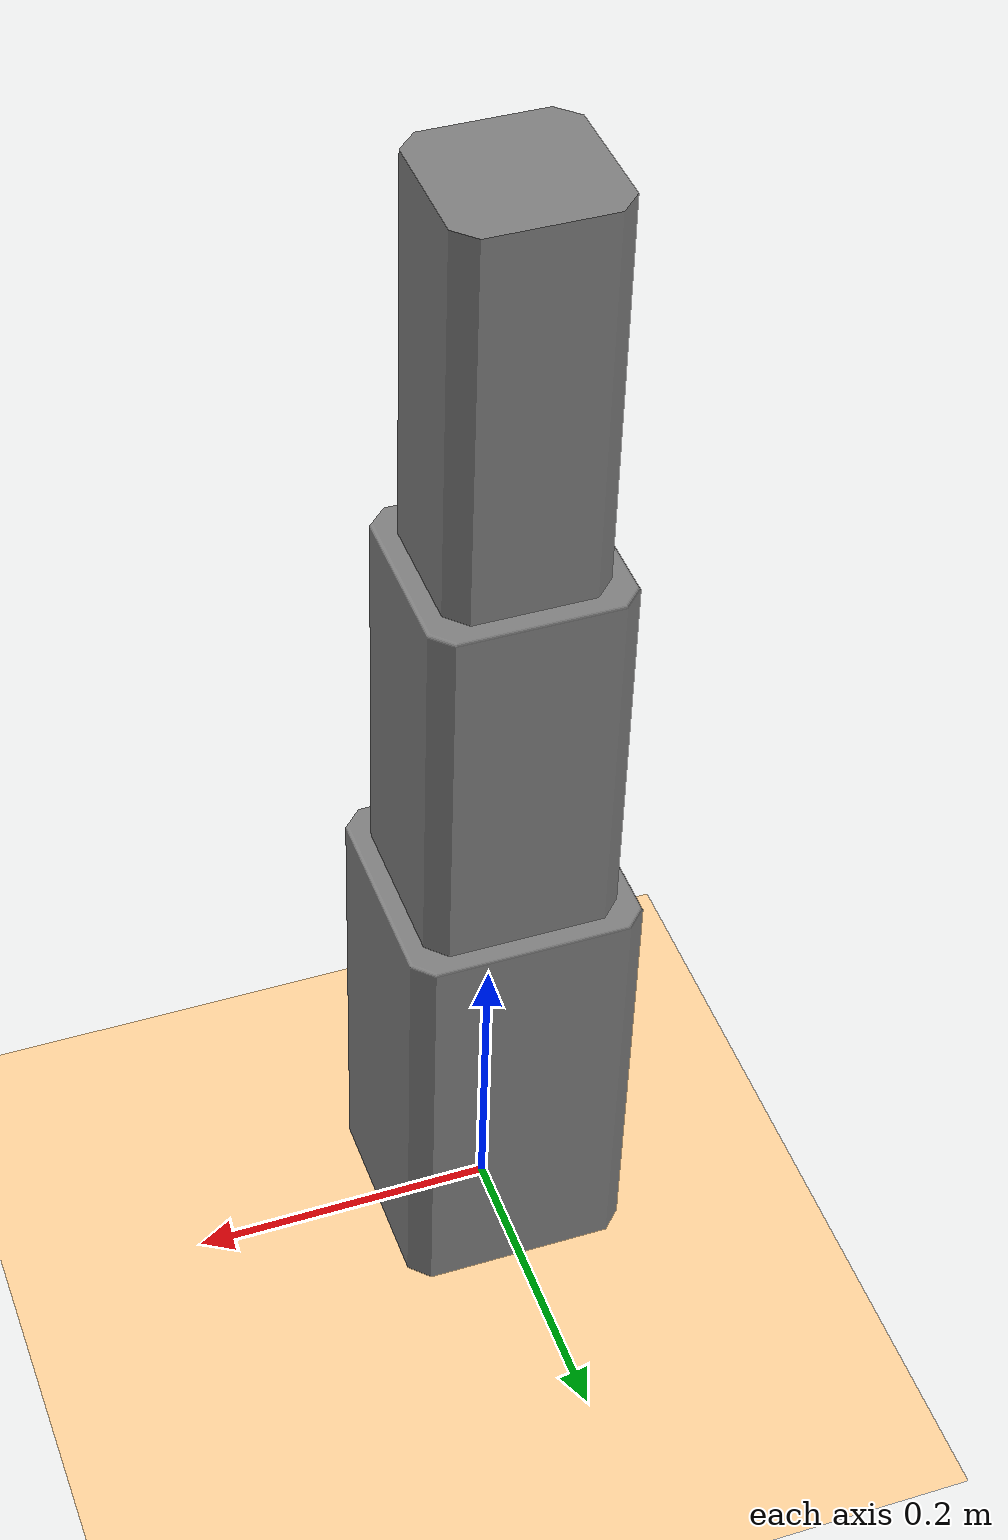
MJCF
<mujoco model="TelescopingPedestalwithSliders">
    <compiler angle="radian" eulerseq="XYZ" />
    <asset>
        <mesh name="Bottom" file="assets/pedestal/Bottom.stl" scale="0.001 0.001 0.001" />
        <mesh name="Middle" file="assets/pedestal/Middle.stl" scale="0.001 0.001 0.001" />
        <mesh name="Top" file="assets/pedestal/Top.stl" scale="0.001 0.001 0.001" />
    </asset>
    <worldbody>
        <light directional="true" pos="-0.5 0.5 3" dir="0 0 -1" />
        <geom pos="0 0 0" size="1 1 1" type="plane" rgba="1 0.83 0.61 0.5" />
        <body name="Bottom" pos="0.0 0.0 0.0" euler="0.0 -0.0 0.0">
            <geom name="Bottom_geom" type="mesh" mesh="Bottom" pos="0 0 0" euler="0 0 0" />
            <inertial mass="16.186799218129053" pos="-6.174998922140081e-17 -4.410713515814344e-17 0.1499646530197762" fullinertia="0.1715811308686268 0.1715811308686267 0.10047406229545162 -1.0280928108841175e-16 -5.850884342065369e-17 -1.568173740499727e-17" />
            <body name="Middle" pos="-1.83697019872103e-17 0.0 -6.93889390390734e-20" euler="0.0 6.123233995736766e-17 0.0">
                <joint name="MiddleBottom" type="slide" axis="-6.123233995736766e-17 0.0 1.0" pos="3.0814879110195774e-33 0.0 0.3" range="-0.25 0" limited="true" damping="800" />
                <geom name="Middle_geom" type="mesh" mesh="Middle" pos="0 0 0" euler="0 0 0" />
                <inertial mass="11.03591056789599" pos="5.2868658133146065e-18 2.587746018778638e-17 0.424964427064295" fullinertia="0.0802129139330039 0.0802129139330039 0.045533415564639176 5.1404640544205905e-17 -5.1428073216496833e-17 -1.571713246613522e-17" />
                <body name="Top" pos="-3.367778697655221e-17 7.888609052210118e-33 -7.095019016745142e-17" euler="1.715310437484733e-32 6.123233995736766e-17 -1.1479225108292335e-48">
                    <joint name="TopMiddle" type="slide" axis="-1.2246467991473532e-16 1.715310437484733e-32 1.0" pos="-1.530808498934193e-17 1.5455983539559162e-33 0.5500000000000002" range="-0.25 0" limited="true" damping="50000" />
                    <geom name="Top_geom" type="mesh" mesh="Top" pos="0 0 0" euler="0 0 0" />
                    <inertial mass="19.011718749999993" pos="-2.3105504054365442e-17 7.510665924318382e-18 0.675" fullinertia="0.11407989501953075 0.11407989501953075 0.03012105305989579 1.7134880181401973e-17 1.5279666092840786e-17 -4.069534043082967e-17" />
                </body>
            </body>
        </body>
    </worldbody>
</mujoco>
